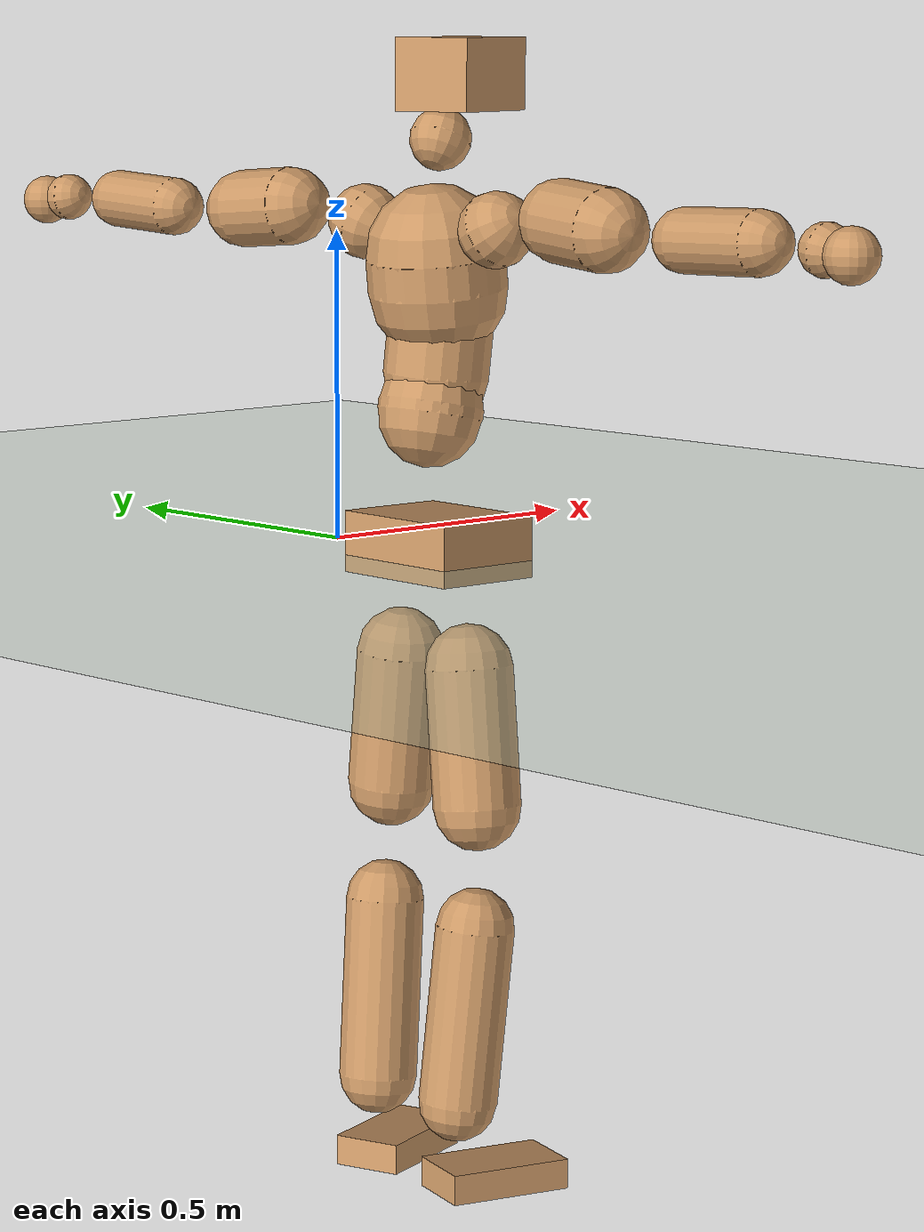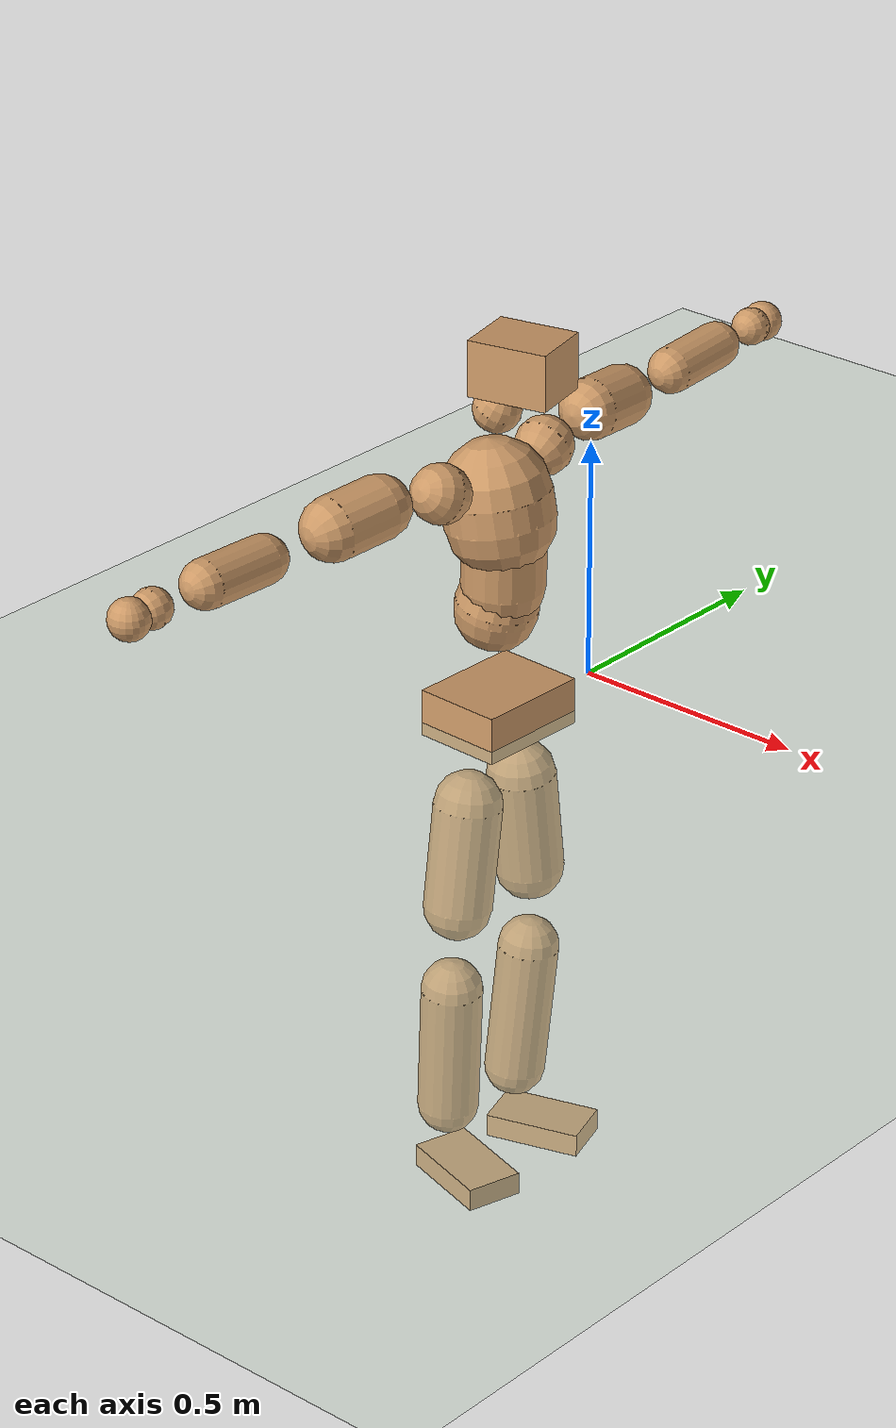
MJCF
<mujoco model="humanoid">
  <compiler coordinate="local" angle="radian"/>
  <default>
    <joint damping="0.0" armature="0.01" stiffness="0.0" limited="true"/>
    <geom conaffinity="1" condim="3" contype="7" margin="0.001" rgba="0.8 0.6 .4 1"/>
  </default>
  <asset>
    <texture type="skybox" builtin="gradient" rgb1=".4 .5 .6" rgb2="0 0 0" width="100" height="100"/>
    <texture builtin="flat" height="1278" mark="cross" markrgb="1 1 1" name="texgeom" random="0.01" rgb1="0.8 0.6 0.4" rgb2="0.8 0.6 0.4" type="cube" width="127"/>
    <texture builtin="checker" height="100" name="texplane" rgb1="0 0 0" rgb2="0.8 0.8 0.8" type="2d" width="100"/>
    <material name="MatPlane" reflectance="0.5" shininess="1" specular="1" texrepeat="60 60" texture="texplane"/>
    <material name="geom" texture="texgeom" texuniform="true"/>
  </asset>
  <worldbody>
    <light cutoff="100" diffuse="1 1 1" dir="-0 0 -1.3" directional="true" exponent="1" pos="0 0 1.3" specular=".1 .1 .1"/>
    <geom conaffinity="1" condim="3" name="floor" pos="0 0 0" rgba="0.8 0.9 0.8 1" size="100 100 .2" type="plane" material="MatPlane"/>
    <body name="Pelvis" pos="-0.0003 -0.2573 0.0283">
      <freejoint name="Pelvis"/>
      <geom type="box" contype="1" conaffinity="1" density="5359.374908" pos="-0.0137 0.0004 -0.0091" size="0.0917 0.1194 0.0488" quat="0.9999 0.0000 0.0000 -0.0162" name="Pelvis"/>
      <body name="L_Hip" pos="-0.0228 0.0673 -0.0892">
        <joint name="L_Hip_x" type="hinge" pos="0 0 0" axis="1 0 0" stiffness="1600" damping="160" armature="0.02" range="-180.0000 180.0000"/>
        <joint name="L_Hip_y" type="hinge" pos="0 0 0" axis="0 1 0" stiffness="1600" damping="160" armature="0.02" range="-180.0000 180.0000"/>
        <joint name="L_Hip_z" type="hinge" pos="0 0 0" axis="0 0 1" stiffness="1600" damping="160" armature="0.02" range="-180.0000 180.0000"/>
        <geom type="capsule" contype="1" conaffinity="1" density="2040.816327" size="0.0701" fromto="0.0008 0.0112 -0.0995 0.0026 0.0358 -0.3173" name="L_Hip"/>
        <body name="L_Knee" pos="0.0034 0.047 -0.4168">
          <joint name="L_Knee_x" type="hinge" pos="0 0 0" axis="1 0 0" stiffness="1600" damping="160" armature="0.02" range="-180.0000 180.0000"/>
          <joint name="L_Knee_y" type="hinge" pos="0 0 0" axis="0 1 0" stiffness="1600" damping="160" armature="0.02" range="-180.0000 180.0000"/>
          <joint name="L_Knee_z" type="hinge" pos="0 0 0" axis="0 0 1" stiffness="1600" damping="160" armature="0.02" range="-180.0000 180.0000"/>
          <geom type="capsule" contype="1" conaffinity="1" density="1234.567901" size="0.0627" fromto="-0.0082 -0.0035 -0.0923 -0.0340 -0.0144 -0.3810" name="L_Knee"/>
          <body name="L_Ankle" pos="-0.0423 -0.0179 -0.4733">
            <joint name="L_Ankle_x" type="hinge" pos="0 0 0" axis="1 0 0" stiffness="1600" damping="160" armature="0.02" range="-180.0000 180.0000"/>
            <joint name="L_Ankle_y" type="hinge" pos="0 0 0" axis="0 1 0" stiffness="1600" damping="160" armature="0.02" range="-180.0000 180.0000"/>
            <joint name="L_Ankle_z" type="hinge" pos="0 0 0" axis="0 0 1" stiffness="1600" damping="160" armature="0.02" range="-180.0000 180.0000"/>
            <geom type="box" contype="1" conaffinity="1" density="999.999955" pos="0.0682 0.0211 -0.0335" size="0.1001 0.0562 0.0242" quat="0.9887 0.0000 0.0000 0.1498" name="L_Ankle"/>
            <body name="L_Toe" pos="0.1364 0.0423 -0.0669">
              <joint name="L_Toe_x" type="hinge" pos="0 0 0" axis="1 0 0" stiffness="1000" damping="100" armature="0.02" range="-180.0000 180.0000"/>
              <joint name="L_Toe_y" type="hinge" pos="0 0 0" axis="0 1 0" stiffness="1000" damping="100" armature="0.02" range="-180.0000 180.0000"/>
              <joint name="L_Toe_z" type="hinge" pos="0 0 0" axis="0 0 1" stiffness="1000" damping="100" armature="0.02" range="-180.0000 180.0000"/>
              <geom type="box" contype="1" conaffinity="1" density="8409980.028636" pos="0.0000 0.0000 0.0328" size="0.0012 0.0028 0.0012" quat="0.9880 0.0000 0.0000 0.1543" name="L_Toe"/>
            </body>
          </body>
        </body>
      </body>
      <body name="R_Hip" pos="-0.0199 -0.0692 -0.0966">
        <joint name="R_Hip_x" type="hinge" pos="0 0 0" axis="1 0 0" stiffness="1600" damping="160" armature="0.02" range="-180.0000 180.0000"/>
        <joint name="R_Hip_y" type="hinge" pos="0 0 0" axis="0 1 0" stiffness="1600" damping="160" armature="0.02" range="-180.0000 180.0000"/>
        <joint name="R_Hip_z" type="hinge" pos="0 0 0" axis="0 0 1" stiffness="1600" damping="160" armature="0.02" range="-180.0000 180.0000"/>
        <geom type="capsule" contype="1" conaffinity="1" density="2040.816327" size="0.0695" fromto="-0.0024 -0.0113 -0.0988 -0.0076 -0.0363 -0.3174" name="R_Hip"/>
        <body name="R_Knee" pos="-0.01 -0.0476 -0.4163">
          <joint name="R_Knee_x" type="hinge" pos="0 0 0" axis="1 0 0" stiffness="1600" damping="160" armature="0.02" range="-180.0000 180.0000"/>
          <joint name="R_Knee_y" type="hinge" pos="0 0 0" axis="0 1 0" stiffness="1600" damping="160" armature="0.02" range="-180.0000 180.0000"/>
          <joint name="R_Knee_z" type="hinge" pos="0 0 0" axis="0 0 1" stiffness="1600" damping="160" armature="0.02" range="-180.0000 180.0000"/>
          <geom type="capsule" contype="1" conaffinity="1" density="1234.567901" size="0.0625" fromto="-0.0077 0.0044 -0.0920 -0.0312 0.0181 -0.3746" name="R_Knee"/>
          <body name="R_Ankle" pos="-0.0389 0.0225 -0.4667">
            <joint name="R_Ankle_x" type="hinge" pos="0 0 0" axis="1 0 0" stiffness="1600" damping="160" armature="0.02" range="-180.0000 180.0000"/>
            <joint name="R_Ankle_y" type="hinge" pos="0 0 0" axis="0 1 0" stiffness="1600" damping="160" armature="0.02" range="-180.0000 180.0000"/>
            <joint name="R_Ankle_z" type="hinge" pos="0 0 0" axis="0 0 1" stiffness="1600" damping="160" armature="0.02" range="-180.0000 180.0000"/>
            <geom type="box" contype="1" conaffinity="1" density="999.999986" pos="0.0731 -0.0207 -0.0345" size="0.1012 0.0585 0.024" quat="0.9905 0.0000 0.0000 -0.1373" name="R_Ankle"/>
            <body name="R_Toe" pos="0.1463 -0.0413 -0.069">
              <joint name="R_Toe_x" type="hinge" pos="0 0 0" axis="1 0 0" stiffness="1000" damping="100" armature="0.02" range="-180.0000 180.0000"/>
              <joint name="R_Toe_y" type="hinge" pos="0 0 0" axis="0 1 0" stiffness="1000" damping="100" armature="0.02" range="-180.0000 180.0000"/>
              <joint name="R_Toe_z" type="hinge" pos="0 0 0" axis="0 0 1" stiffness="1000" damping="100" armature="0.02" range="-180.0000 180.0000"/>
              <geom type="box" contype="1" conaffinity="1" density="8139648.553591" pos="0.0000 0.0000 0.0349" size="0.0012 0.0028 0.0012" quat="0.9916 0.0000 0.0000 -0.1293" name="R_Toe"/>
            </body>
          </body>
        </body>
      </body>
      <body name="Torso" pos="-0.0396 0.0046 0.1314">
        <joint name="Torso_x" type="hinge" pos="0 0 0" axis="1 0 0" stiffness="2000" damping="200" armature="0.02" range="-180.0000 180.0000"/>
        <joint name="Torso_y" type="hinge" pos="0 0 0" axis="0 1 0" stiffness="2000" damping="200" armature="0.02" range="-180.0000 180.0000"/>
        <joint name="Torso_z" type="hinge" pos="0 0 0" axis="0 0 1" stiffness="2000" damping="200" armature="0.02" range="-180.0000 180.0000"/>
        <geom type="capsule" contype="1" conaffinity="1" density="2040.816327" size="0.0831" fromto="0.0170 0.0020 0.0813 0.0134 0.0016 0.0642" name="Torso"/>
        <body name="Spine" pos="0.0304 0.0037 0.1455">
          <joint name="Spine_x" type="hinge" pos="0 0 0" axis="1 0 0" stiffness="2000" damping="200" armature="0.02" range="-180.0000 180.0000"/>
          <joint name="Spine_y" type="hinge" pos="0 0 0" axis="0 1 0" stiffness="2000" damping="200" armature="0.02" range="-180.0000 180.0000"/>
          <joint name="Spine_z" type="hinge" pos="0 0 0" axis="0 0 1" stiffness="2000" damping="200" armature="0.02" range="-180.0000 180.0000"/>
          <geom type="capsule" contype="1" conaffinity="1" density="2040.816327" size="0.0834" fromto="0.0063 -0.0047 0.0830 -0.0017 0.0013 -0.0223" name="Spine"/>
          <body name="Chest" pos="0.0046 -0.0034 0.0607">
            <joint name="Chest_x" type="hinge" pos="0 0 0" axis="1 0 0" stiffness="2000" damping="200" armature="0.02" range="-180.0000 180.0000"/>
            <joint name="Chest_y" type="hinge" pos="0 0 0" axis="0 1 0" stiffness="2000" damping="200" armature="0.02" range="-180.0000 180.0000"/>
            <joint name="Chest_z" type="hinge" pos="0 0 0" axis="0 0 1" stiffness="2000" damping="200" armature="0.02" range="-180.0000 180.0000"/>
            <geom type="capsule" contype="1" conaffinity="1" density="2040.816327" size="0.1104" fromto="-0.0163 -0.0055 0.1090 -0.0081 -0.0027 0.0543" name="Chest"/>
            <body name="Neck" pos="-0.0355 -0.0143 0.2378">
              <joint name="Neck_x" type="hinge" pos="0 0 0" axis="1 0 0" stiffness="1000" damping="100" armature="0.02" range="-180.0000 180.0000"/>
              <joint name="Neck_y" type="hinge" pos="0 0 0" axis="0 1 0" stiffness="1000" damping="100" armature="0.02" range="-180.0000 180.0000"/>
              <joint name="Neck_z" type="hinge" pos="0 0 0" axis="0 0 1" stiffness="1000" damping="100" armature="0.02" range="-180.0000 180.0000"/>
              <geom type="capsule" contype="1" conaffinity="1" density="1000" size="0.0484" fromto="0.0254 0.0050 0.0480 0.0263 0.0052 0.0498" name="Neck"/>
              <body name="Head" pos="0.0517 0.0102 0.0978">
                <joint name="Head_x" type="hinge" pos="0 0 0" axis="1 0 0" stiffness="1000" damping="100" armature="0.02" range="-180.0000 180.0000"/>
                <joint name="Head_y" type="hinge" pos="0 0 0" axis="0 1 0" stiffness="1000" damping="100" armature="0.02" range="-180.0000 180.0000"/>
                <joint name="Head_z" type="hinge" pos="0 0 0" axis="0 0 1" stiffness="1000" damping="100" armature="0.02" range="-180.0000 180.0000"/>
                <geom type="box" contype="1" conaffinity="1" density="2249.999857" pos="0.0268 0.0061 0.0499" size="0.0817 0.0666 0.0567" quat="0.9938 0.0000 0.0000 0.1111" name="Head"/>
              </body>
            </body>
            <body name="L_Thorax" pos="-0.0157 0.0793 0.1272">
              <joint name="L_Thorax_x" type="hinge" pos="0 0 0" axis="1 0 0" stiffness="1000" damping="100" armature="0.02" range="-180.0000 180.0000"/>
              <joint name="L_Thorax_y" type="hinge" pos="0 0 0" axis="0 1 0" stiffness="1000" damping="100" armature="0.02" range="-180.0000 180.0000"/>
              <joint name="L_Thorax_z" type="hinge" pos="0 0 0" axis="0 0 1" stiffness="1000" damping="100" armature="0.02" range="-180.0000 180.0000"/>
              <geom type="capsule" contype="1" conaffinity="1" density="1000" size="0.0593" fromto="-0.0097 0.0663 0.0259 -0.0100 0.0681 0.0266" name="L_Thorax"/>
              <body name="L_Shoulder" pos="-0.0197 0.1344 0.0525">
                <joint name="L_Shoulder_x" type="hinge" pos="0 0 0" axis="1 0 0" stiffness="1000" damping="100" armature="0.02" range="-720.0000 720.0000"/>
                <joint name="L_Shoulder_y" type="hinge" pos="0 0 0" axis="0 1 0" stiffness="1000" damping="100" armature="0.02" range="-720.0000 720.0000"/>
                <joint name="L_Shoulder_z" type="hinge" pos="0 0 0" axis="0 0 1" stiffness="1000" damping="100" armature="0.02" range="-720.0000 720.0000"/>
                <geom type="capsule" contype="1" conaffinity="1" density="1000" size="0.0625" fromto="-0.0085 0.0918 -0.0073 -0.0182 0.1978 -0.0156" name="L_Shoulder"/>
                <body name="L_Elbow" pos="-0.0267 0.2896 -0.0229">
                  <joint name="L_Elbow_x" type="hinge" pos="0 0 0" axis="1 0 0" stiffness="1000" damping="100" armature="0.02" range="-720.0000 720.0000"/>
                  <joint name="L_Elbow_y" type="hinge" pos="0 0 0" axis="0 1 0" stiffness="1000" damping="100" armature="0.02" range="-720.0000 720.0000"/>
                  <joint name="L_Elbow_z" type="hinge" pos="0 0 0" axis="0 0 1" stiffness="1000" damping="100" armature="0.02" range="-720.0000 720.0000"/>
                  <geom type="capsule" contype="1" conaffinity="1" density="1000" size="0.0475" fromto="-0.0012 0.0774 0.0042 -0.0034 0.2233 0.0120" name="L_Elbow"/>
                  <body name="L_Wrist" pos="-0.0046 0.3007 0.0162">
                    <joint name="L_Wrist_x" type="hinge" pos="0 0 0" axis="1 0 0" stiffness="600" damping="60" armature="0.02" range="-180.0000 180.0000"/>
                    <joint name="L_Wrist_y" type="hinge" pos="0 0 0" axis="0 1 0" stiffness="600" damping="60" armature="0.02" range="-180.0000 180.0000"/>
                    <joint name="L_Wrist_z" type="hinge" pos="0 0 0" axis="0 0 1" stiffness="600" damping="60" armature="0.02" range="-180.0000 180.0000"/>
                    <geom type="capsule" contype="1" conaffinity="1" density="1000" size="0.0386" fromto="-0.0089 0.0485 -0.0060 -0.0092 0.0504 -0.0062" name="L_Wrist"/>
                    <body name="L_Hand" pos="-0.0181 0.0989 -0.0122">
                      <joint name="L_Hand_x" type="hinge" pos="0 0 0" axis="1 0 0" stiffness="600" damping="60" armature="0.02" range="-180.0000 180.0000"/>
                      <joint name="L_Hand_y" type="hinge" pos="0 0 0" axis="0 1 0" stiffness="600" damping="60" armature="0.02" range="-180.0000 180.0000"/>
                      <joint name="L_Hand_z" type="hinge" pos="0 0 0" axis="0 0 1" stiffness="600" damping="60" armature="0.02" range="-180.0000 180.0000"/>
                      <geom type="sphere" contype="1" conaffinity="1" density="1000" size="0.0405" pos="0.0000 0.0000 0.0000" name="L_Hand"/>
                    </body>
                  </body>
                </body>
              </body>
            </body>
            <body name="R_Thorax" pos="-0.0222 -0.0898 0.125">
              <joint name="R_Thorax_x" type="hinge" pos="0 0 0" axis="1 0 0" stiffness="1000" damping="100" armature="0.02" range="-180.0000 180.0000"/>
              <joint name="R_Thorax_y" type="hinge" pos="0 0 0" axis="0 1 0" stiffness="1000" damping="100" armature="0.02" range="-180.0000 180.0000"/>
              <joint name="R_Thorax_z" type="hinge" pos="0 0 0" axis="0 0 1" stiffness="1000" damping="100" armature="0.02" range="-180.0000 180.0000"/>
              <geom type="capsule" contype="1" conaffinity="1" density="1000" size="0.0595" fromto="-0.0038 -0.0617 0.0278 -0.0039 -0.0635 0.0286" name="R_Thorax"/>
              <body name="R_Shoulder" pos="-0.0077 -0.1251 0.0564">
                <joint name="R_Shoulder_x" type="hinge" pos="0 0 0" axis="1 0 0" stiffness="1000" damping="100" armature="0.02" range="-720.0000 720.0000"/>
                <joint name="R_Shoulder_y" type="hinge" pos="0 0 0" axis="0 1 0" stiffness="1000" damping="100" armature="0.02" range="-720.0000 720.0000"/>
                <joint name="R_Shoulder_z" type="hinge" pos="0 0 0" axis="0 0 1" stiffness="1000" damping="100" armature="0.02" range="-720.0000 720.0000"/>
                <geom type="capsule" contype="1" conaffinity="1" density="1000" size="0.0639" fromto="-0.0120 -0.0928 -0.0073 -0.0264 -0.2035 -0.0161" name="R_Shoulder"/>
                <body name="R_Elbow" pos="-0.0384 -0.2963 -0.0234">
                  <joint name="R_Elbow_x" type="hinge" pos="0 0 0" axis="1 0 0" stiffness="1000" damping="100" armature="0.02" range="-720.0000 720.0000"/>
                  <joint name="R_Elbow_y" type="hinge" pos="0 0 0" axis="0 1 0" stiffness="1000" damping="100" armature="0.02" range="-720.0000 720.0000"/>
                  <joint name="R_Elbow_z" type="hinge" pos="0 0 0" axis="0 0 1" stiffness="1000" damping="100" armature="0.02" range="-720.0000 720.0000"/>
                  <geom type="capsule" contype="1" conaffinity="1" density="1000" size="0.0484" fromto="-0.0013 -0.0784 0.0017 -0.0038 -0.2260 0.0048" name="R_Elbow"/>
                  <body name="R_Wrist" pos="-0.0051 -0.3044 0.0065">
                    <joint name="R_Wrist_x" type="hinge" pos="0 0 0" axis="1 0 0" stiffness="600" damping="60" armature="0.02" range="-180.0000 180.0000"/>
                    <joint name="R_Wrist_y" type="hinge" pos="0 0 0" axis="0 1 0" stiffness="600" damping="60" armature="0.02" range="-180.0000 180.0000"/>
                    <joint name="R_Wrist_z" type="hinge" pos="0 0 0" axis="0 0 1" stiffness="600" damping="60" armature="0.02" range="-180.0000 180.0000"/>
                    <geom type="capsule" contype="1" conaffinity="1" density="1000" size="0.0395" fromto="-0.0057 -0.0497 -0.0049 -0.0059 -0.0516 -0.0051" name="R_Wrist"/>
                    <body name="R_Hand" pos="-0.0116 -0.1013 -0.01">
                      <joint name="R_Hand_x" type="hinge" pos="0 0 0" axis="1 0 0" stiffness="600" damping="60" armature="0.02" range="-180.0000 180.0000"/>
                      <joint name="R_Hand_y" type="hinge" pos="0 0 0" axis="0 1 0" stiffness="600" damping="60" armature="0.02" range="-180.0000 180.0000"/>
                      <joint name="R_Hand_z" type="hinge" pos="0 0 0" axis="0 0 1" stiffness="600" damping="60" armature="0.02" range="-180.0000 180.0000"/>
                      <geom type="sphere" contype="1" conaffinity="1" density="1000" size="0.0411" pos="0.0000 0.0000 0.0000" name="R_Hand"/>
                    </body>
                  </body>
                </body>
              </body>
            </body>
          </body>
        </body>
      </body>
    </body>
  </worldbody>
  <actuator>
    <motor name="L_Hip_x" joint="L_Hip_x" gear="500"/>
    <motor name="L_Hip_y" joint="L_Hip_y" gear="500"/>
    <motor name="L_Hip_z" joint="L_Hip_z" gear="500"/>
    <motor name="L_Knee_x" joint="L_Knee_x" gear="500"/>
    <motor name="L_Knee_y" joint="L_Knee_y" gear="500"/>
    <motor name="L_Knee_z" joint="L_Knee_z" gear="500"/>
    <motor name="L_Ankle_x" joint="L_Ankle_x" gear="500"/>
    <motor name="L_Ankle_y" joint="L_Ankle_y" gear="500"/>
    <motor name="L_Ankle_z" joint="L_Ankle_z" gear="500"/>
    <motor name="L_Toe_x" joint="L_Toe_x" gear="500"/>
    <motor name="L_Toe_y" joint="L_Toe_y" gear="500"/>
    <motor name="L_Toe_z" joint="L_Toe_z" gear="500"/>
    <motor name="R_Hip_x" joint="R_Hip_x" gear="500"/>
    <motor name="R_Hip_y" joint="R_Hip_y" gear="500"/>
    <motor name="R_Hip_z" joint="R_Hip_z" gear="500"/>
    <motor name="R_Knee_x" joint="R_Knee_x" gear="500"/>
    <motor name="R_Knee_y" joint="R_Knee_y" gear="500"/>
    <motor name="R_Knee_z" joint="R_Knee_z" gear="500"/>
    <motor name="R_Ankle_x" joint="R_Ankle_x" gear="500"/>
    <motor name="R_Ankle_y" joint="R_Ankle_y" gear="500"/>
    <motor name="R_Ankle_z" joint="R_Ankle_z" gear="500"/>
    <motor name="R_Toe_x" joint="R_Toe_x" gear="500"/>
    <motor name="R_Toe_y" joint="R_Toe_y" gear="500"/>
    <motor name="R_Toe_z" joint="R_Toe_z" gear="500"/>
    <motor name="Torso_x" joint="Torso_x" gear="500"/>
    <motor name="Torso_y" joint="Torso_y" gear="500"/>
    <motor name="Torso_z" joint="Torso_z" gear="500"/>
    <motor name="Spine_x" joint="Spine_x" gear="500"/>
    <motor name="Spine_y" joint="Spine_y" gear="500"/>
    <motor name="Spine_z" joint="Spine_z" gear="500"/>
    <motor name="Chest_x" joint="Chest_x" gear="500"/>
    <motor name="Chest_y" joint="Chest_y" gear="500"/>
    <motor name="Chest_z" joint="Chest_z" gear="500"/>
    <motor name="Neck_x" joint="Neck_x" gear="500"/>
    <motor name="Neck_y" joint="Neck_y" gear="500"/>
    <motor name="Neck_z" joint="Neck_z" gear="500"/>
    <motor name="Head_x" joint="Head_x" gear="500"/>
    <motor name="Head_y" joint="Head_y" gear="500"/>
    <motor name="Head_z" joint="Head_z" gear="500"/>
    <motor name="L_Thorax_x" joint="L_Thorax_x" gear="500"/>
    <motor name="L_Thorax_y" joint="L_Thorax_y" gear="500"/>
    <motor name="L_Thorax_z" joint="L_Thorax_z" gear="500"/>
    <motor name="L_Shoulder_x" joint="L_Shoulder_x" gear="500"/>
    <motor name="L_Shoulder_y" joint="L_Shoulder_y" gear="500"/>
    <motor name="L_Shoulder_z" joint="L_Shoulder_z" gear="500"/>
    <motor name="L_Elbow_x" joint="L_Elbow_x" gear="500"/>
    <motor name="L_Elbow_y" joint="L_Elbow_y" gear="500"/>
    <motor name="L_Elbow_z" joint="L_Elbow_z" gear="500"/>
    <motor name="L_Wrist_x" joint="L_Wrist_x" gear="500"/>
    <motor name="L_Wrist_y" joint="L_Wrist_y" gear="500"/>
    <motor name="L_Wrist_z" joint="L_Wrist_z" gear="500"/>
    <motor name="L_Hand_x" joint="L_Hand_x" gear="500"/>
    <motor name="L_Hand_y" joint="L_Hand_y" gear="500"/>
    <motor name="L_Hand_z" joint="L_Hand_z" gear="500"/>
    <motor name="R_Thorax_x" joint="R_Thorax_x" gear="500"/>
    <motor name="R_Thorax_y" joint="R_Thorax_y" gear="500"/>
    <motor name="R_Thorax_z" joint="R_Thorax_z" gear="500"/>
    <motor name="R_Shoulder_x" joint="R_Shoulder_x" gear="500"/>
    <motor name="R_Shoulder_y" joint="R_Shoulder_y" gear="500"/>
    <motor name="R_Shoulder_z" joint="R_Shoulder_z" gear="500"/>
    <motor name="R_Elbow_x" joint="R_Elbow_x" gear="500"/>
    <motor name="R_Elbow_y" joint="R_Elbow_y" gear="500"/>
    <motor name="R_Elbow_z" joint="R_Elbow_z" gear="500"/>
    <motor name="R_Wrist_x" joint="R_Wrist_x" gear="500"/>
    <motor name="R_Wrist_y" joint="R_Wrist_y" gear="500"/>
    <motor name="R_Wrist_z" joint="R_Wrist_z" gear="500"/>
    <motor name="R_Hand_x" joint="R_Hand_x" gear="500"/>
    <motor name="R_Hand_y" joint="R_Hand_y" gear="500"/>
    <motor name="R_Hand_z" joint="R_Hand_z" gear="500"/>
  </actuator>
  <contact>
    <exclude body1="Torso" body2="Chest"/>
    <exclude body1="Head" body2="Chest"/>
    <exclude body1="R_Knee" body2="R_Toe"/>
    <exclude body1="R_Knee" body2="L_Ankle"/>
    <exclude body1="R_Knee" body2="L_Toe"/>
    <exclude body1="L_Knee" body2="L_Toe"/>
    <exclude body1="L_Knee" body2="R_Ankle"/>
    <exclude body1="L_Knee" body2="R_Toe"/>
    <exclude body1="L_Shoulder" body2="Chest"/>
    <exclude body1="R_Shoulder" body2="Chest"/>
  </contact>
  <sensor/>
  <size njmax="700" nconmax="700"/>
</mujoco>
